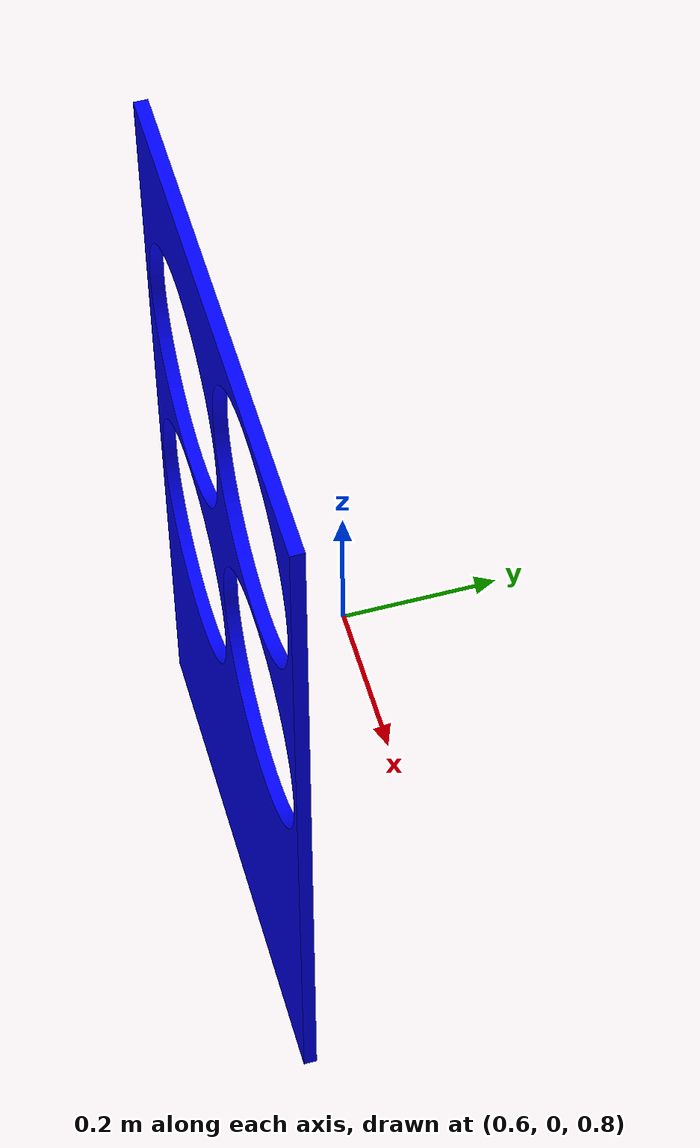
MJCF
<mujoco model="obstacle_one_fb">
  <default>
    <default class="one_fb_visual">
      <geom type="mesh" contype="0" group="2" conaffinity="0"/>
    </default>
    <default class="one_fb_collision">
      <geom type="mesh" group="3"/>
    </default>
  </default>
  <asset>
    <material name="one_fb" specular="0.0" shininess="0.0" rgba="0.0 0.0 255 1"/>
    <mesh file="obstacle_one_fb.obj"/>
    <mesh file="obstacle_one_fb_collision_0.obj"/>
    <mesh file="obstacle_one_fb_collision_1.obj"/>
    <mesh file="obstacle_one_fb_collision_2.obj"/>
    <mesh file="obstacle_one_fb_collision_3.obj"/>
    <mesh file="obstacle_one_fb_collision_4.obj"/>
    <mesh file="obstacle_one_fb_collision_5.obj"/>
    <mesh file="obstacle_one_fb_collision_6.obj"/>
    <mesh file="obstacle_one_fb_collision_7.obj"/>
    <mesh file="obstacle_one_fb_collision_8.obj"/>
    <mesh file="obstacle_one_fb_collision_9.obj"/>
    <mesh file="obstacle_one_fb_collision_10.obj"/>
    <mesh file="obstacle_one_fb_collision_11.obj"/>
    <mesh file="obstacle_one_fb_collision_12.obj"/>
    <mesh file="obstacle_one_fb_collision_13.obj"/>
    <mesh file="obstacle_one_fb_collision_14.obj"/>
    <mesh file="obstacle_one_fb_collision_15.obj"/>
    <mesh file="obstacle_one_fb_collision_16.obj"/>
    <mesh file="obstacle_one_fb_collision_17.obj"/>
    <mesh file="obstacle_one_fb_collision_18.obj"/>
    <mesh file="obstacle_one_fb_collision_19.obj"/>
    <mesh file="obstacle_one_fb_collision_20.obj"/>
    <mesh file="obstacle_one_fb_collision_21.obj"/>
    <mesh file="obstacle_one_fb_collision_22.obj"/>
    <mesh file="obstacle_one_fb_collision_23.obj"/>
    <mesh file="obstacle_one_fb_collision_24.obj"/>
    <mesh file="obstacle_one_fb_collision_25.obj"/>
    <mesh file="obstacle_one_fb_collision_26.obj"/>
    <mesh file="obstacle_one_fb_collision_27.obj"/>
    <mesh file="obstacle_one_fb_collision_28.obj"/>
    <mesh file="obstacle_one_fb_collision_29.obj"/>
    <mesh file="obstacle_one_fb_collision_30.obj"/>
    <mesh file="obstacle_one_fb_collision_31.obj"/>
    <mesh file="obstacle_one_fb_collision_32.obj"/>
    <mesh file="obstacle_one_fb_collision_33.obj"/>
    <mesh file="obstacle_one_fb_collision_34.obj"/>
    <mesh file="obstacle_one_fb_collision_35.obj"/>
    <mesh file="obstacle_one_fb_collision_36.obj"/>
    <mesh file="obstacle_one_fb_collision_37.obj"/>
    <mesh file="obstacle_one_fb_collision_38.obj"/>
    <mesh file="obstacle_one_fb_collision_39.obj"/>
    <mesh file="obstacle_one_fb_collision_40.obj"/>
    <mesh file="obstacle_one_fb_collision_41.obj"/>
    <mesh file="obstacle_one_fb_collision_42.obj"/>
    <mesh file="obstacle_one_fb_collision_43.obj"/>
    <mesh file="obstacle_one_fb_collision_44.obj"/>
    <mesh file="obstacle_one_fb_collision_45.obj"/>
    <mesh file="obstacle_one_fb_collision_46.obj"/>
    <mesh file="obstacle_one_fb_collision_47.obj"/>
    <mesh file="obstacle_one_fb_collision_48.obj"/>
    <mesh file="obstacle_one_fb_collision_49.obj"/>
    <mesh file="obstacle_one_fb_collision_50.obj"/>
    <mesh file="obstacle_one_fb_collision_51.obj"/>
    <mesh file="obstacle_one_fb_collision_52.obj"/>
  </asset>
  <worldbody>

    <body name="obstacle_one_fb" pos="0.9 -0.2 1.29" euler="0.0 0.0 0.0">
      <geom material="one_fb" mesh="obstacle_one_fb" class="one_fb_visual"/>
      <geom mesh="obstacle_one_fb_collision_0" rgba="0.6101884168693147 0.5013558358295562 0.3750157491429298 1" class="one_fb_collision"/>
      <geom mesh="obstacle_one_fb_collision_1" rgba="0.3197766079063148 0.0630129026545383 0.9335258841070098 1" class="one_fb_collision"/>
      <geom mesh="obstacle_one_fb_collision_2" rgba="0.9108158752504505 0.08102232168341117 0.16866269976573056 1" class="one_fb_collision"/>
      <geom mesh="obstacle_one_fb_collision_3" rgba="0.10473108078407722 0.5920247887601962 0.742063035875078 1" class="one_fb_collision"/>
      <geom mesh="obstacle_one_fb_collision_4" rgba="0.02726534612234266 0.8348800576567024 0.2472343628388558 1" class="one_fb_collision"/>
      <geom mesh="obstacle_one_fb_collision_5" rgba="0.19204655309530705 0.9187041969897035 0.8441340594157927 1" class="one_fb_collision"/>
      <geom mesh="obstacle_one_fb_collision_6" rgba="0.3071781254364119 0.2517825239609851 0.523140856959443 1" class="one_fb_collision"/>
      <geom mesh="obstacle_one_fb_collision_7" rgba="0.6926227929085429 0.9094244809507976 0.02370822727819666 1" class="one_fb_collision"/>
      <geom mesh="obstacle_one_fb_collision_8" rgba="0.5787088672634442 0.8096365435175201 0.2602641439202693 1" class="one_fb_collision"/>
      <geom mesh="obstacle_one_fb_collision_9" rgba="0.849815297295223 0.5388980262017071 0.9598232929857924 1" class="one_fb_collision"/>
      <geom mesh="obstacle_one_fb_collision_10" rgba="0.2917951829641381 0.45923277213496394 0.49029545644466854 1" class="one_fb_collision"/>
      <geom mesh="obstacle_one_fb_collision_11" rgba="0.12395686060864441 0.3512305320197019 0.06903491335511036 1" class="one_fb_collision"/>
      <geom mesh="obstacle_one_fb_collision_12" rgba="0.293976290343973 0.8094709569136029 0.7667599071476935 1" class="one_fb_collision"/>
      <geom mesh="obstacle_one_fb_collision_13" rgba="0.5039459794738507 0.3517085888506809 0.6426825363213106 1" class="one_fb_collision"/>
      <geom mesh="obstacle_one_fb_collision_14" rgba="0.4278298524000127 0.35626575299663477 0.5938592268505543 1" class="one_fb_collision"/>
      <geom mesh="obstacle_one_fb_collision_15" rgba="0.7211696750908759 0.6187001164494359 0.8808443418590652 1" class="one_fb_collision"/>
      <geom mesh="obstacle_one_fb_collision_16" rgba="0.8215827871195348 0.9930859628170767 0.243066259000283 1" class="one_fb_collision"/>
      <geom mesh="obstacle_one_fb_collision_17" rgba="0.5003293750579785 0.3037800197064672 0.11260751234274669 1" class="one_fb_collision"/>
      <geom mesh="obstacle_one_fb_collision_18" rgba="0.8917925729876892 0.490366227831307 0.16081131162521034 1" class="one_fb_collision"/>
      <geom mesh="obstacle_one_fb_collision_19" rgba="0.9322030784504363 0.41019158794711763 0.8177294375549135 1" class="one_fb_collision"/>
      <geom mesh="obstacle_one_fb_collision_20" rgba="0.6035937053687193 0.5819203898871778 0.033390764261364336 1" class="one_fb_collision"/>
      <geom mesh="obstacle_one_fb_collision_21" rgba="0.6021806398243617 0.5325873574416643 0.09421692426125494 1" class="one_fb_collision"/>
      <geom mesh="obstacle_one_fb_collision_22" rgba="0.2638464035628679 0.2282702629340998 0.9268837786499511 1" class="one_fb_collision"/>
      <geom mesh="obstacle_one_fb_collision_23" rgba="0.9029935714466251 0.3760465794535126 0.09466756493946993 1" class="one_fb_collision"/>
      <geom mesh="obstacle_one_fb_collision_24" rgba="0.45752956104588904 0.2679332895275539 0.5574092411169519 1" class="one_fb_collision"/>
      <geom mesh="obstacle_one_fb_collision_25" rgba="0.8407553740731012 0.9572288097225581 0.11548838081599466 1" class="one_fb_collision"/>
      <geom mesh="obstacle_one_fb_collision_26" rgba="0.6913611950040957 0.2656253882778492 0.35926050992566294 1" class="one_fb_collision"/>
      <geom mesh="obstacle_one_fb_collision_27" rgba="0.4047034289257124 0.8761854709289868 0.031454868059094254 1" class="one_fb_collision"/>
      <geom mesh="obstacle_one_fb_collision_28" rgba="0.15742170377075915 0.09286554432467253 0.360469575154608 1" class="one_fb_collision"/>
      <geom mesh="obstacle_one_fb_collision_29" rgba="0.3207249683480722 0.6748015004462028 0.8558398379618526 1" class="one_fb_collision"/>
      <geom mesh="obstacle_one_fb_collision_30" rgba="0.6345891142340481 0.579074978077198 0.38617259843855023 1" class="one_fb_collision"/>
      <geom mesh="obstacle_one_fb_collision_31" rgba="0.9715650736185414 0.009467598543477451 0.3597383251003661 1" class="one_fb_collision"/>
      <geom mesh="obstacle_one_fb_collision_32" rgba="0.777647910474525 0.04955714721515825 0.1395412457925943 1" class="one_fb_collision"/>
      <geom mesh="obstacle_one_fb_collision_33" rgba="0.5322413387634475 0.8599526563315828 0.6687175241342184 1" class="one_fb_collision"/>
      <geom mesh="obstacle_one_fb_collision_34" rgba="0.4129733696436475 0.9644035636885688 0.7978561717322743 1" class="one_fb_collision"/>
      <geom mesh="obstacle_one_fb_collision_35" rgba="0.39883216956190526 0.4522163127889093 0.10661244770497247 1" class="one_fb_collision"/>
      <geom mesh="obstacle_one_fb_collision_36" rgba="0.7896713051620241 0.43744615696911593 0.7757427791810806 1" class="one_fb_collision"/>
      <geom mesh="obstacle_one_fb_collision_37" rgba="0.8502399324307367 0.7291661292492572 0.48838222697239664 1" class="one_fb_collision"/>
      <geom mesh="obstacle_one_fb_collision_38" rgba="0.8622180846727522 0.21225612145639927 0.22629128362852324 1" class="one_fb_collision"/>
      <geom mesh="obstacle_one_fb_collision_39" rgba="0.5672986335825537 0.8845098166144647 0.9023392482942867 1" class="one_fb_collision"/>
      <geom mesh="obstacle_one_fb_collision_40" rgba="0.2396335257958424 0.5260295796861789 0.02667759178203677 1" class="one_fb_collision"/>
      <geom mesh="obstacle_one_fb_collision_41" rgba="0.5022947389325122 0.14498794633105616 0.5890277039958838 1" class="one_fb_collision"/>
      <geom mesh="obstacle_one_fb_collision_42" rgba="0.13411437260943204 0.17374382172227443 0.4214775055094735 1" class="one_fb_collision"/>
      <geom mesh="obstacle_one_fb_collision_43" rgba="0.9749060219270879 0.11331045931201544 0.14947765500807797 1" class="one_fb_collision"/>
      <geom mesh="obstacle_one_fb_collision_44" rgba="0.08236915835763259 0.6995463845038873 0.011228765078955094 1" class="one_fb_collision"/>
      <geom mesh="obstacle_one_fb_collision_45" rgba="0.46636738807260114 0.45545728315722955 0.12285403521593308 1" class="one_fb_collision"/>
      <geom mesh="obstacle_one_fb_collision_46" rgba="0.5437276668972459 0.18415698066414943 0.959715672627741 1" class="one_fb_collision"/>
      <geom mesh="obstacle_one_fb_collision_47" rgba="0.9438765642445928 0.40724846286062477 0.8971375782098544 1" class="one_fb_collision"/>
      <geom mesh="obstacle_one_fb_collision_48" rgba="0.11160195947228702 0.723656787284903 0.2703847952263039 1" class="one_fb_collision"/>
      <geom mesh="obstacle_one_fb_collision_49" rgba="0.12957369678792474 0.7322209362966837 0.35657380489595214 1" class="one_fb_collision"/>
      <geom mesh="obstacle_one_fb_collision_50" rgba="0.2772214493517223 0.15785835986915486 0.85609078553625 1" class="one_fb_collision"/>
      <geom mesh="obstacle_one_fb_collision_51" rgba="0.016338823635000055 0.9404621120192899 0.31007606251171627 1" class="one_fb_collision"/>
      <geom mesh="obstacle_one_fb_collision_52" rgba="0.19724949214792442 0.9221108294671443 0.4023276721998904 1" class="one_fb_collision"/>
    </body>
  </worldbody>
</mujoco>
